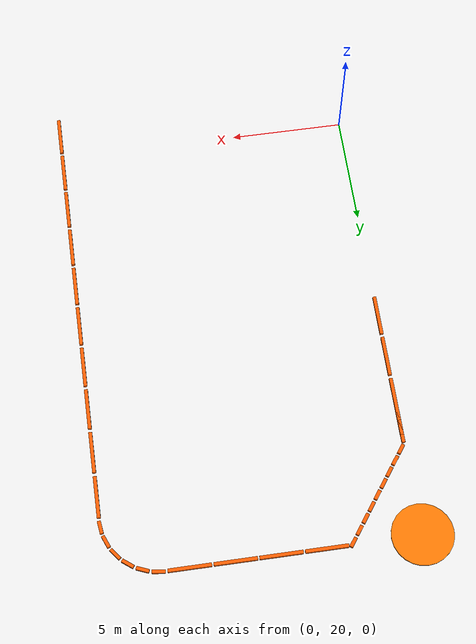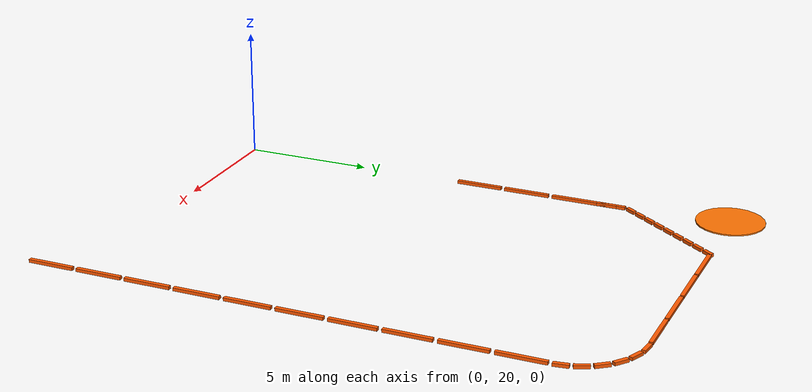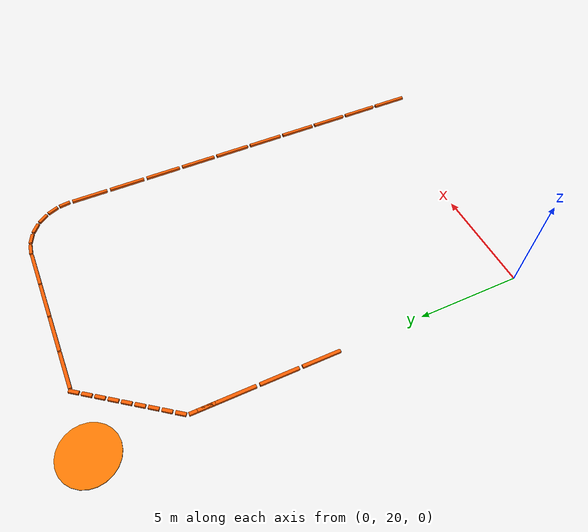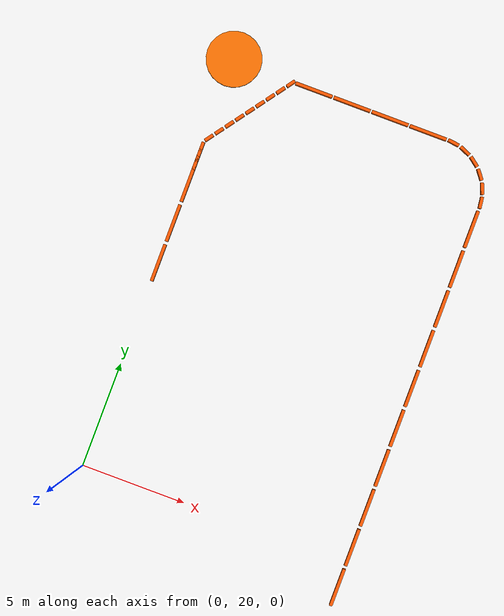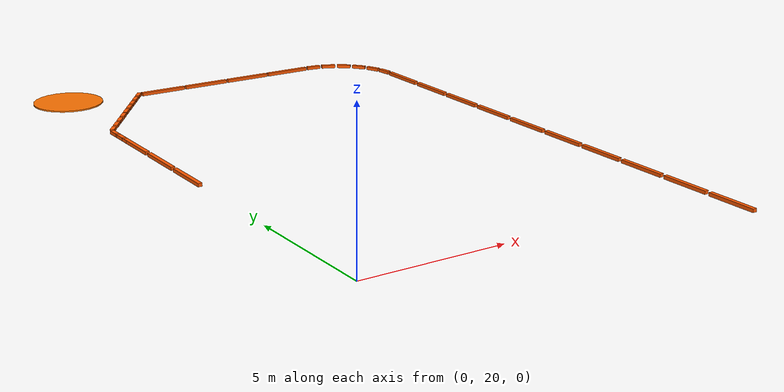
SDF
<sdf version="1.10">
 <world name="warehouse_fuel">
  <model name="hand_signal_spot">
   <static>true</static>
   <pose>0 40 0.1982676088809967 0 0 0</pose>
   <link name="link">
    <visual name="visual">
     <geometry><cylinder><radius>1.3</radius><length>0.050000000000000003</length></cylinder></geometry>
     <material><ambient>1 0.449999988 0 1</ambient><diffuse>1 0.449999988 0 1</diffuse></material>
    </visual>
    <inertial>
     <mass>1</mass>
     <inertia><ixx>1</ixx><ixy>0</ixy><ixz>0</ixz><iyy>1</iyy><iyz>0</iyz><izz>1</izz></inertia>
    </inertial>
   </link>
  </model>
  <model name="track_signal_entry_1">
   <static>true</static>
   <pose>0 35.1 0.06 0 0 -1.5708</pose>
   <link name="link">
    <visual name="visual">
     <geometry><box><size>1 0.15 0.12</size></box></geometry>
     <material>
      <ambient>1 0.349999994 0 1</ambient>
      <diffuse>1 0.349999994 0 1</diffuse>
      <emissive>0.200000003 0.0700000003 0 1</emissive>
     </material>
    </visual>
    <inertial>
     <mass>1</mass>
     <inertia><ixx>1</ixx><ixy>0</ixy><ixz>0</ixz><iyy>1</iyy><iyz>0</iyz><izz>1</izz></inertia>
    </inertial>
   </link>
  </model>
  <model name="track_spine_1">
   <static>true</static>
   <pose>0 33.9212 0.06 0 0 -1.5708</pose>
   <link name="link">
    <visual name="visual">
     <geometry><box><size>1.8 0.15 0.12</size></box></geometry>
     <material>
      <ambient>1 0.349999994 0 1</ambient>
      <diffuse>1 0.349999994 0 1</diffuse>
      <emissive>0.200000003 0.0700000003 0 1</emissive>
     </material>
    </visual>
    <inertial>
     <mass>1</mass>
     <inertia><ixx>1</ixx><ixy>0</ixy><ixz>0</ixz><iyy>1</iyy><iyz>0</iyz><izz>1</izz></inertia>
    </inertial>
   </link>
  </model>
  <model name="track_spine_2">
   <static>true</static>
   <pose>0 31.9635 0.06 0 0 -1.5708</pose>
   <link name="link">
    <visual name="visual">
     <geometry><box><size>1.8 0.15 0.12</size></box></geometry>
     <material>
      <ambient>1 0.349999994 0 1</ambient>
      <diffuse>1 0.349999994 0 1</diffuse>
      <emissive>0.200000003 0.0700000003 0 1</emissive>
     </material>
    </visual>
    <inertial>
     <mass>1</mass>
     <inertia><ixx>1</ixx><ixy>0</ixy><ixz>0</ixz><iyy>1</iyy><iyz>0</iyz><izz>1</izz></inertia>
    </inertial>
   </link>
  </model>
  <model name="track_spine_3">
   <static>true</static>
   <pose>0 30.0058 0.06 0 0 -1.5708</pose>
   <link name="link">
    <visual name="visual">
     <geometry><box><size>1.8 0.15 0.12</size></box></geometry>
     <material>
      <ambient>1 0.349999994 0 1</ambient>
      <diffuse>1 0.349999994 0 1</diffuse>
      <emissive>0.200000003 0.0700000003 0 1</emissive>
     </material>
    </visual>
    <inertial>
     <mass>1</mass>
     <inertia><ixx>1</ixx><ixy>0</ixy><ixz>0</ixz><iyy>1</iyy><iyz>0</iyz><izz>1</izz></inertia>
    </inertial>
   </link>
  </model>
  <model name="track_loop_top_r_1">
   <static>true</static>
   <pose>3.9375 40 0.06 0 0 0</pose>
   <link name="link">
    <visual name="visual">
     <geometry><box><size>1.8 0.15 0.12</size></box></geometry>
     <material>
      <ambient>1 0.349999994 0 1</ambient>
      <diffuse>1 0.349999994 0 1</diffuse>
      <emissive>0.200000003 0.0700000003 0 1</emissive>
     </material>
    </visual>
    <inertial>
     <mass>1</mass>
     <inertia><ixx>1</ixx><ixy>0</ixy><ixz>0</ixz><iyy>1</iyy><iyz>0</iyz><izz>1</izz></inertia>
    </inertial>
   </link>
  </model>
  <model name="track_loop_top_r_2">
   <static>true</static>
   <pose>5.8125 40 0.06 0 0 0</pose>
   <link name="link">
    <visual name="visual">
     <geometry><box><size>1.8 0.15 0.12</size></box></geometry>
     <material>
      <ambient>1 0.349999994 0 1</ambient>
      <diffuse>1 0.349999994 0 1</diffuse>
      <emissive>0.200000003 0.0700000003 0 1</emissive>
     </material>
    </visual>
    <inertial>
     <mass>1</mass>
     <inertia><ixx>1</ixx><ixy>0</ixy><ixz>0</ixz><iyy>1</iyy><iyz>0</iyz><izz>1</izz></inertia>
    </inertial>
   </link>
  </model>
  <model name="track_loop_top_r_3">
   <static>true</static>
   <pose>7.6875 40 0.06 0 0 0</pose>
   <link name="link">
    <visual name="visual">
     <geometry><box><size>1.8 0.15 0.12</size></box></geometry>
     <material>
      <ambient>1 0.349999994 0 1</ambient>
      <diffuse>1 0.349999994 0 1</diffuse>
      <emissive>0.200000003 0.0700000003 0 1</emissive>
     </material>
    </visual>
    <inertial>
     <mass>1</mass>
     <inertia><ixx>1</ixx><ixy>0</ixy><ixz>0</ixz><iyy>1</iyy><iyz>0</iyz><izz>1</izz></inertia>
    </inertial>
   </link>
  </model>
  <model name="track_loop_top_r_4">
   <static>true</static>
   <pose>9.5625 40 0.06 0 0 0</pose>
   <link name="link">
    <visual name="visual">
     <geometry><box><size>1.8 0.15 0.12</size></box></geometry>
     <material>
      <ambient>1 0.349999994 0 1</ambient>
      <diffuse>1 0.349999994 0 1</diffuse>
      <emissive>0.200000003 0.0700000003 0 1</emissive>
     </material>
    </visual>
    <inertial>
     <mass>1</mass>
     <inertia><ixx>1</ixx><ixy>0</ixy><ixz>0</ixz><iyy>1</iyy><iyz>0</iyz><izz>1</izz></inertia>
    </inertial>
   </link>
  </model>
  <model name="track_loop_corner_tr_1">
   <static>true</static>
   <pose>10.8263 39.9786 0.06 0 0 -0.1314</pose>
   <link name="link">
    <visual name="visual">
     <geometry><box><size>0.55 0.15 0.12</size></box></geometry>
     <material>
      <ambient>1 0.349999994 0 1</ambient>
      <diffuse>1 0.349999994 0 1</diffuse>
      <emissive>0.200000003 0.0700000003 0 1</emissive>
     </material>
    </visual>
    <inertial>
     <mass>1</mass>
     <inertia><ixx>1</ixx><ixy>0</ixy><ixz>0</ixz><iyy>1</iyy><iyz>0</iyz><izz>1</izz></inertia>
    </inertial>
   </link>
  </model>
  <model name="track_loop_corner_tr_2">
   <static>true</static>
   <pose>11.4567 39.8097 0.06 0 0 -0.393199</pose>
   <link name="link">
    <visual name="visual">
     <geometry><box><size>0.55 0.15 0.12</size></box></geometry>
     <material>
      <ambient>1 0.349999994 0 1</ambient>
      <diffuse>1 0.349999994 0 1</diffuse>
      <emissive>0.200000003 0.0700000003 0 1</emissive>
     </material>
    </visual>
    <inertial>
     <mass>1</mass>
     <inertia><ixx>1</ixx><ixy>0</ixy><ixz>0</ixz><iyy>1</iyy><iyz>0</iyz><izz>1</izz></inertia>
    </inertial>
   </link>
  </model>
  <model name="track_loop_corner_tr_3">
   <static>true</static>
   <pose>12.0219 39.4834 0.06 0 0 -0.654998</pose>
   <link name="link">
    <visual name="visual">
     <geometry><box><size>0.55 0.15 0.12</size></box></geometry>
     <material>
      <ambient>1 0.349999994 0 1</ambient>
      <diffuse>1 0.349999994 0 1</diffuse>
      <emissive>0.200000003 0.0700000003 0 1</emissive>
     </material>
    </visual>
    <inertial>
     <mass>1</mass>
     <inertia><ixx>1</ixx><ixy>0</ixy><ixz>0</ixz><iyy>1</iyy><iyz>0</iyz><izz>1</izz></inertia>
    </inertial>
   </link>
  </model>
  <model name="track_loop_corner_tr_4">
   <static>true</static>
   <pose>12.4834 39.0219 0.06 0 0 -0.916798</pose>
   <link name="link">
    <visual name="visual">
     <geometry><box><size>0.55 0.15 0.12</size></box></geometry>
     <material>
      <ambient>1 0.349999994 0 1</ambient>
      <diffuse>1 0.349999994 0 1</diffuse>
      <emissive>0.200000003 0.0700000003 0 1</emissive>
     </material>
    </visual>
    <inertial>
     <mass>1</mass>
     <inertia><ixx>1</ixx><ixy>0</ixy><ixz>0</ixz><iyy>1</iyy><iyz>0</iyz><izz>1</izz></inertia>
    </inertial>
   </link>
  </model>
  <model name="track_loop_corner_tr_5">
   <static>true</static>
   <pose>12.8097 38.4567 0.06 0 0 -1.1786</pose>
   <link name="link">
    <visual name="visual">
     <geometry><box><size>0.55 0.15 0.12</size></box></geometry>
     <material>
      <ambient>1 0.349999994 0 1</ambient>
      <diffuse>1 0.349999994 0 1</diffuse>
      <emissive>0.200000003 0.0700000003 0 1</emissive>
     </material>
    </visual>
    <inertial>
     <mass>1</mass>
     <inertia><ixx>1</ixx><ixy>0</ixy><ixz>0</ixz><iyy>1</iyy><iyz>0</iyz><izz>1</izz></inertia>
    </inertial>
   </link>
  </model>
  <model name="track_loop_corner_tr_6">
   <static>true</static>
   <pose>12.9786 37.8263 0.06 0 0 -1.4404</pose>
   <link name="link">
    <visual name="visual">
     <geometry><box><size>0.55 0.15 0.12</size></box></geometry>
     <material>
      <ambient>1 0.349999994 0 1</ambient>
      <diffuse>1 0.349999994 0 1</diffuse>
      <emissive>0.200000003 0.0700000003 0 1</emissive>
     </material>
    </visual>
    <inertial>
     <mass>1</mass>
     <inertia><ixx>1</ixx><ixy>0</ixy><ixz>0</ixz><iyy>1</iyy><iyz>0</iyz><izz>1</izz></inertia>
    </inertial>
   </link>
  </model>
  <model name="track_loop_right_1">
   <static>true</static>
   <pose>13 36.5192 0.06 0 0 -1.5708</pose>
   <link name="link">
    <visual name="visual">
     <geometry><box><size>1.8 0.15 0.12</size></box></geometry>
     <material>
      <ambient>1 0.349999994 0 1</ambient>
      <diffuse>1 0.349999994 0 1</diffuse>
      <emissive>0.200000003 0.0700000003 0 1</emissive>
     </material>
    </visual>
    <inertial>
     <mass>1</mass>
     <inertia><ixx>1</ixx><ixy>0</ixy><ixz>0</ixz><iyy>1</iyy><iyz>0</iyz><izz>1</izz></inertia>
    </inertial>
   </link>
  </model>
  <model name="track_loop_right_2">
   <static>true</static>
   <pose>13 34.5577 0.06 0 0 -1.5708</pose>
   <link name="link">
    <visual name="visual">
     <geometry><box><size>1.8 0.15 0.12</size></box></geometry>
     <material>
      <ambient>1 0.349999994 0 1</ambient>
      <diffuse>1 0.349999994 0 1</diffuse>
      <emissive>0.200000003 0.0700000003 0 1</emissive>
     </material>
    </visual>
    <inertial>
     <mass>1</mass>
     <inertia><ixx>1</ixx><ixy>0</ixy><ixz>0</ixz><iyy>1</iyy><iyz>0</iyz><izz>1</izz></inertia>
    </inertial>
   </link>
  </model>
  <model name="track_loop_right_3">
   <static>true</static>
   <pose>13 32.5962 0.06 0 0 -1.5708</pose>
   <link name="link">
    <visual name="visual">
     <geometry><box><size>1.8 0.15 0.12</size></box></geometry>
     <material>
      <ambient>1 0.349999994 0 1</ambient>
      <diffuse>1 0.349999994 0 1</diffuse>
      <emissive>0.200000003 0.0700000003 0 1</emissive>
     </material>
    </visual>
    <inertial>
     <mass>1</mass>
     <inertia><ixx>1</ixx><ixy>0</ixy><ixz>0</ixz><iyy>1</iyy><iyz>0</iyz><izz>1</izz></inertia>
    </inertial>
   </link>
  </model>
  <model name="track_loop_right_4">
   <static>true</static>
   <pose>13 30.6346 0.06 0 0 -1.5708</pose>
   <link name="link">
    <visual name="visual">
     <geometry><box><size>1.8 0.15 0.12</size></box></geometry>
     <material>
      <ambient>1 0.349999994 0 1</ambient>
      <diffuse>1 0.349999994 0 1</diffuse>
      <emissive>0.200000003 0.0700000003 0 1</emissive>
     </material>
    </visual>
    <inertial>
     <mass>1</mass>
     <inertia><ixx>1</ixx><ixy>0</ixy><ixz>0</ixz><iyy>1</iyy><iyz>0</iyz><izz>1</izz></inertia>
    </inertial>
   </link>
  </model>
  <model name="track_loop_right_5">
   <static>true</static>
   <pose>13 28.6731 0.06 0 0 -1.5708</pose>
   <link name="link">
    <visual name="visual">
     <geometry><box><size>1.8 0.15 0.12</size></box></geometry>
     <material>
      <ambient>1 0.349999994 0 1</ambient>
      <diffuse>1 0.349999994 0 1</diffuse>
      <emissive>0.200000003 0.0700000003 0 1</emissive>
     </material>
    </visual>
    <inertial>
     <mass>1</mass>
     <inertia><ixx>1</ixx><ixy>0</ixy><ixz>0</ixz><iyy>1</iyy><iyz>0</iyz><izz>1</izz></inertia>
    </inertial>
   </link>
  </model>
  <model name="track_loop_right_6">
   <static>true</static>
   <pose>13 26.7115 0.06 0 0 -1.5708</pose>
   <link name="link">
    <visual name="visual">
     <geometry><box><size>1.8 0.15 0.12</size></box></geometry>
     <material>
      <ambient>1 0.349999994 0 1</ambient>
      <diffuse>1 0.349999994 0 1</diffuse>
      <emissive>0.200000003 0.0700000003 0 1</emissive>
     </material>
    </visual>
    <inertial>
     <mass>1</mass>
     <inertia><ixx>1</ixx><ixy>0</ixy><ixz>0</ixz><iyy>1</iyy><iyz>0</iyz><izz>1</izz></inertia>
    </inertial>
   </link>
  </model>
  <model name="track_loop_right_7">
   <static>true</static>
   <pose>13 24.75 0.06 0 0 -1.5708</pose>
   <link name="link">
    <visual name="visual">
     <geometry><box><size>1.8 0.15 0.12</size></box></geometry>
     <material>
      <ambient>1 0.349999994 0 1</ambient>
      <diffuse>1 0.349999994 0 1</diffuse>
      <emissive>0.200000003 0.0700000003 0 1</emissive>
     </material>
    </visual>
    <inertial>
     <mass>1</mass>
     <inertia><ixx>1</ixx><ixy>0</ixy><ixz>0</ixz><iyy>1</iyy><iyz>0</iyz><izz>1</izz></inertia>
    </inertial>
   </link>
  </model>
  <model name="track_loop_right_8">
   <static>true</static>
   <pose>13 22.7885 0.06 0 0 -1.5708</pose>
   <link name="link">
    <visual name="visual">
     <geometry><box><size>1.8 0.15 0.12</size></box></geometry>
     <material>
      <ambient>1 0.349999994 0 1</ambient>
      <diffuse>1 0.349999994 0 1</diffuse>
      <emissive>0.200000003 0.0700000003 0 1</emissive>
     </material>
    </visual>
    <inertial>
     <mass>1</mass>
     <inertia><ixx>1</ixx><ixy>0</ixy><ixz>0</ixz><iyy>1</iyy><iyz>0</iyz><izz>1</izz></inertia>
    </inertial>
   </link>
  </model>
  <model name="track_loop_right_9">
   <static>true</static>
   <pose>13 20.8269 0.06 0 0 -1.5708</pose>
   <link name="link">
    <visual name="visual">
     <geometry><box><size>1.8 0.15 0.12</size></box></geometry>
     <material>
      <ambient>1 0.349999994 0 1</ambient>
      <diffuse>1 0.349999994 0 1</diffuse>
      <emissive>0.200000003 0.0700000003 0 1</emissive>
     </material>
    </visual>
    <inertial>
     <mass>1</mass>
     <inertia><ixx>1</ixx><ixy>0</ixy><ixz>0</ixz><iyy>1</iyy><iyz>0</iyz><izz>1</izz></inertia>
    </inertial>
   </link>
  </model>
  <model name="track_loop_right_10">
   <static>true</static>
   <pose>13 18.8654 0.06 0 0 -1.5708</pose>
   <link name="link">
    <visual name="visual">
     <geometry><box><size>1.8 0.15 0.12</size></box></geometry>
     <material>
      <ambient>1 0.349999994 0 1</ambient>
      <diffuse>1 0.349999994 0 1</diffuse>
      <emissive>0.200000003 0.0700000003 0 1</emissive>
     </material>
    </visual>
    <inertial>
     <mass>1</mass>
     <inertia><ixx>1</ixx><ixy>0</ixy><ixz>0</ixz><iyy>1</iyy><iyz>0</iyz><izz>1</izz></inertia>
    </inertial>
   </link>
  </model>
  <model name="track_signal_v_r_4">
   <static>true</static>
   <pose>2.83333 39.8958 0.06 0 0 -2.19959</pose>
   <link name="link">
    <visual name="visual">
     <geometry><box><size>0.45 0.15 0.12</size></box></geometry>
     <material>
      <ambient>1 0.349999994 0 1</ambient>
      <diffuse>1 0.349999994 0 1</diffuse>
      <emissive>0.200000003 0.0700000003 0 1</emissive>
     </material>
    </visual>
    <inertial>
     <mass>1</mass>
     <inertia><ixx>1</ixx><ixy>0</ixy><ixz>0</ixz><iyy>1</iyy><iyz>0</iyz><izz>1</izz></inertia>
    </inertial>
   </link>
  </model>
  <model name="track_signal_v_r_5">
   <static>true</static>
   <pose>2.5 39.4375 0.06 0 0 -2.19959</pose>
   <link name="link">
    <visual name="visual">
     <geometry><box><size>0.45 0.15 0.12</size></box></geometry>
     <material>
      <ambient>1 0.349999994 0 1</ambient>
      <diffuse>1 0.349999994 0 1</diffuse>
      <emissive>0.200000003 0.0700000003 0 1</emissive>
     </material>
    </visual>
    <inertial>
     <mass>1</mass>
     <inertia><ixx>1</ixx><ixy>0</ixy><ixz>0</ixz><iyy>1</iyy><iyz>0</iyz><izz>1</izz></inertia>
    </inertial>
   </link>
  </model>
  <model name="track_signal_v_r_6">
   <static>true</static>
   <pose>2.16667 38.9792 0.06 0 0 -2.19959</pose>
   <link name="link">
    <visual name="visual">
     <geometry><box><size>0.45 0.15 0.12</size></box></geometry>
     <material>
      <ambient>1 0.349999994 0 1</ambient>
      <diffuse>1 0.349999994 0 1</diffuse>
      <emissive>0.200000003 0.0700000003 0 1</emissive>
     </material>
    </visual>
    <inertial>
     <mass>1</mass>
     <inertia><ixx>1</ixx><ixy>0</ixy><ixz>0</ixz><iyy>1</iyy><iyz>0</iyz><izz>1</izz></inertia>
    </inertial>
   </link>
  </model>
  <model name="track_signal_v_r_7">
   <static>true</static>
   <pose>1.83333 38.5208 0.06 0 0 -2.19959</pose>
   <link name="link">
    <visual name="visual">
     <geometry><box><size>0.45 0.15 0.12</size></box></geometry>
     <material>
      <ambient>1 0.349999994 0 1</ambient>
      <diffuse>1 0.349999994 0 1</diffuse>
      <emissive>0.200000003 0.0700000003 0 1</emissive>
     </material>
    </visual>
    <inertial>
     <mass>1</mass>
     <inertia><ixx>1</ixx><ixy>0</ixy><ixz>0</ixz><iyy>1</iyy><iyz>0</iyz><izz>1</izz></inertia>
    </inertial>
   </link>
  </model>
  <model name="track_signal_v_r_8">
   <static>true</static>
   <pose>1.5 38.0625 0.06 0 0 -2.19959</pose>
   <link name="link">
    <visual name="visual">
     <geometry><box><size>0.45 0.15 0.12</size></box></geometry>
     <material>
      <ambient>1 0.349999994 0 1</ambient>
      <diffuse>1 0.349999994 0 1</diffuse>
      <emissive>0.200000003 0.0700000003 0 1</emissive>
     </material>
    </visual>
    <inertial>
     <mass>1</mass>
     <inertia><ixx>1</ixx><ixy>0</ixy><ixz>0</ixz><iyy>1</iyy><iyz>0</iyz><izz>1</izz></inertia>
    </inertial>
   </link>
  </model>
  <model name="track_signal_v_r_9">
   <static>true</static>
   <pose>1.16667 37.6042 0.06 0 0 -2.19959</pose>
   <link name="link">
    <visual name="visual">
     <geometry><box><size>0.45 0.15 0.12</size></box></geometry>
     <material>
      <ambient>1 0.349999994 0 1</ambient>
      <diffuse>1 0.349999994 0 1</diffuse>
      <emissive>0.200000003 0.0700000003 0 1</emissive>
     </material>
    </visual>
    <inertial>
     <mass>1</mass>
     <inertia><ixx>1</ixx><ixy>0</ixy><ixz>0</ixz><iyy>1</iyy><iyz>0</iyz><izz>1</izz></inertia>
    </inertial>
   </link>
  </model>
  <model name="track_signal_v_r_10">
   <static>true</static>
   <pose>0.833333 37.1458 0.06 0 0 -2.19959</pose>
   <link name="link">
    <visual name="visual">
     <geometry><box><size>0.45 0.15 0.12</size></box></geometry>
     <material>
      <ambient>1 0.349999994 0 1</ambient>
      <diffuse>1 0.349999994 0 1</diffuse>
      <emissive>0.200000003 0.0700000003 0 1</emissive>
     </material>
    </visual>
    <inertial>
     <mass>1</mass>
     <inertia><ixx>1</ixx><ixy>0</ixy><ixz>0</ixz><iyy>1</iyy><iyz>0</iyz><izz>1</izz></inertia>
    </inertial>
   </link>
  </model>
  <model name="track_signal_v_r_11">
   <static>true</static>
   <pose>0.5 36.6875 0.06 0 0 -2.19959</pose>
   <link name="link">
    <visual name="visual">
     <geometry><box><size>0.45 0.15 0.12</size></box></geometry>
     <material>
      <ambient>1 0.349999994 0 1</ambient>
      <diffuse>1 0.349999994 0 1</diffuse>
      <emissive>0.200000003 0.0700000003 0 1</emissive>
     </material>
    </visual>
    <inertial>
     <mass>1</mass>
     <inertia><ixx>1</ixx><ixy>0</ixy><ixz>0</ixz><iyy>1</iyy><iyz>0</iyz><izz>1</izz></inertia>
    </inertial>
   </link>
  </model>
  <model name="track_signal_v_r_12">
   <static>true</static>
   <pose>0.166667 36.2292 0.06 0 0 -2.19959</pose>
   <link name="link">
    <visual name="visual">
     <geometry><box><size>0.45 0.15 0.12</size></box></geometry>
     <material>
      <ambient>1 0.349999994 0 1</ambient>
      <diffuse>1 0.349999994 0 1</diffuse>
      <emissive>0.200000003 0.0700000003 0 1</emissive>
     </material>
    </visual>
    <inertial>
     <mass>1</mass>
     <inertia><ixx>1</ixx><ixy>0</ixy><ixz>0</ixz><iyy>1</iyy><iyz>0</iyz><izz>1</izz></inertia>
    </inertial>
   </link>
  </model>
  <model name="track_signal_v_stem_1">
   <static>true</static>
   <pose>0 35.725 0.06 0 0 -1.5708</pose>
   <link name="link">
    <visual name="visual">
     <geometry><box><size>0.45 0.15 0.12</size></box></geometry>
     <material>
      <ambient>1 0.349999994 0 1</ambient>
      <diffuse>1 0.349999994 0 1</diffuse>
      <emissive>0.200000003 0.0700000003 0 1</emissive>
     </material>
    </visual>
    <inertial>
     <mass>1</mass>
     <inertia><ixx>1</ixx><ixy>0</ixy><ixz>0</ixz><iyy>1</iyy><iyz>0</iyz><izz>1</izz></inertia>
    </inertial>
   </link>
  </model>
  <model name="track_signal_v_stem_2">
   <static>true</static>
   <pose>0 35.175 0.06 0 0 -1.5708</pose>
   <link name="link">
    <visual name="visual">
     <geometry><box><size>0.45 0.15 0.12</size></box></geometry>
     <material>
      <ambient>1 0.349999994 0 1</ambient>
      <diffuse>1 0.349999994 0 1</diffuse>
      <emissive>0.200000003 0.0700000003 0 1</emissive>
     </material>
    </visual>
    <inertial>
     <mass>1</mass>
     <inertia><ixx>1</ixx><ixy>0</ixy><ixz>0</ixz><iyy>1</iyy><iyz>0</iyz><izz>1</izz></inertia>
    </inertial>
   </link>
  </model>
 </world>
</sdf>
